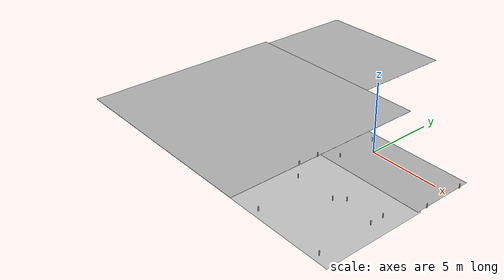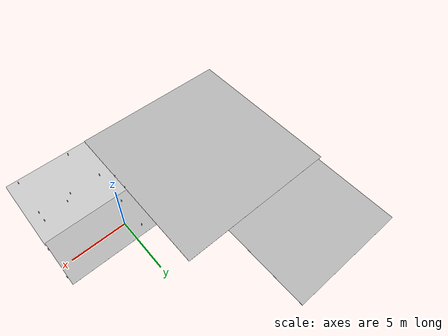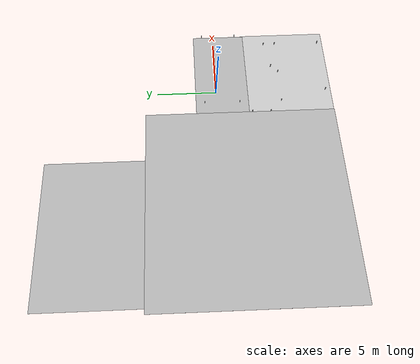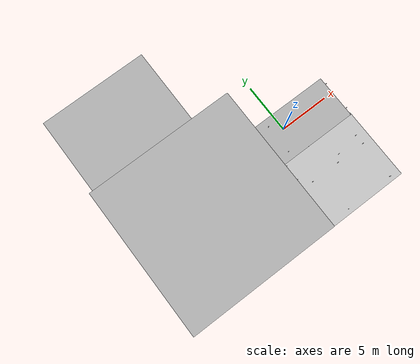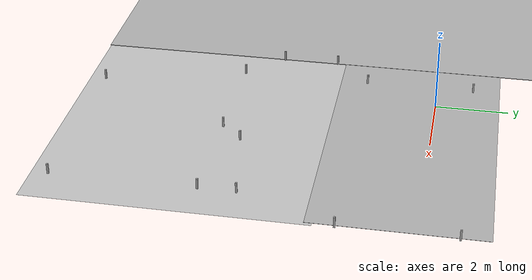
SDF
<?xml version="1.0" ?>
<sdf version='1.4'>
  <world name='default'>

    <!-- global light source -->

    <light type="directional" name="sun">
      <cast_shadows>false</cast_shadows>
      <pose>0 1 10 0 0 0</pose>
      <diffuse>0.8 0.8 0.8 1</diffuse>
      <specular>0.1 0.1 0.1 1</specular>
      <attenuation>
        <range>1000</range>
        <constant>0.9</constant>
        <linear>0.01</linear>
        <quadratic>0.001</quadratic>
      </attenuation>
      <direction>-0.5 0.5 -1.0</direction>
    </light>

    <light name='my_light' type='directional'>
      <pose>0.000000 0.000000 30.000000 0.000000 0.000000 0.000000</pose>
      <diffuse>0.900000 0.900000 0.900000 1.000000</diffuse>
      <specular>0.100000 0.100000 0.100000 1.000000</specular>
      <attenuation>
        <range>20.000000</range>
      </attenuation>
      <direction>0.000000 0.000000 -1.000000</direction>
      <cast_shadows>0</cast_shadows>
    </light>

    <!-- A ground plane -->

    <model name="floor_student_area">
      <static>true</static>
      <link name="link">
      <pose>2 -6.25 0 0 0 0</pose>
        <visual name="visual">
          <cast_shadows>false</cast_shadows>
          <geometry>
            <plane>
              <normal>0 0 1</normal>
              <size>8.1 7.4</size>
            </plane>
          </geometry>
          <material>
            <script>
              <name>carpet</name>
            </script>
          </material>
        </visual>
        <collision name="collision">
          <geometry>
            <plane>
              <normal>0 0 1</normal>
              <size>8.1 7.4</size>
            </plane>
          </geometry>
          <surface>
            <friction>
              <ode>
                <mu>100</mu>
                <mu2>50</mu2>
              </ode>
            </friction>
          </surface>
        </collision>
      </link>
    </model>

    <model name="floor_kitchen">
      <static>true</static>
      <link name="link">
      <pose>1.969 -0.5 0 0 0 0</pose>
        <visual name="visual">
          <cast_shadows>false</cast_shadows>
          <geometry>
            <plane>
              <normal>0 0 1</normal>
              <size>8 4.5</size>
            </plane>
          </geometry>
          <material>
            <script>
              <name>floor_kitchen</name>
            </script>
          </material>
        </visual>
        <collision name="collision">
          <geometry>
            <plane>
              <normal>0 0 1</normal>
              <size>8 4.5</size>
            </plane>
          </geometry>
          <surface>
            <friction>
              <ode>
                <mu>100</mu>
                <mu2>50</mu2>
              </ode>
            </friction>
          </surface>
        </collision>
      </link>
    </model>

    <model name="floor_office">
      <static>true</static>
      <link name="link">
      <pose>-11.931 9.93 0 0 0 0</pose>
        <visual name="visual">
          <cast_shadows>false</cast_shadows>
          <geometry>
            <plane>
              <normal>0 0 1</normal>
              <size>11.4 8.4</size>
            </plane>
          </geometry>
          <material>
            <script>
              <name>carpet</name>
            </script>
          </material>
        </visual>
        <collision name="collision">
          <geometry>
            <plane>
              <normal>0 0 1</normal>
              <size>11.4 8.4</size>
            </plane>
          </geometry>
          <surface>
            <friction>
              <ode>
                <mu>100</mu>
                <mu2>50</mu2>
              </ode>
            </friction>
          </surface>
        </collision>
      </link>
    </model>

    <model name="floor">
      <static>true</static>
      <link name="link">
      <pose>-10 -1.969 0 0 0 0</pose>
        <visual name="visual">
          <cast_shadows>false</cast_shadows>
          <geometry>
            <plane>
              <normal>0 0 1</normal>
              <size>16 16</size>
            </plane>
          </geometry>
          <material>
            <script>
              <name>carpet</name>
            </script>
          </material>
        </visual>
        <collision name="collision">
          <geometry>
            <plane>
              <normal>0 0 1</normal>
              <size>16 16</size>
            </plane>
          </geometry>
          <surface>
            <friction>
              <ode>
                <mu>100</mu>
                <mu2>50</mu2>
              </ode>
            </friction>
          </surface>
        </collision>
      </link>
    </model>

    <model name="reflMarker">
      <link name="link">
        <pose>0 0 0.115 0 -0 0</pose>
        <inertial>
          <mass>0.39</mass>
          <inertia>
            <ixx>0.00058</ixx>
            <ixy>0</ixy>
            <ixz>0</ixz>
            <iyy>0.00058</iyy>
            <iyz>0</iyz>
            <izz>0.00019</izz>
          </inertia>
        </inertial>
        <collision name="collision">
          <pose>0 0 0.01 0 -0 0</pose>
          <laser_retro>2000</laser_retro>
          <geometry>
            <box>
              <size>0.05 0.05 0.3</size>
            </box>
          </geometry>
          <max_contacts>10</max_contacts>
          <surface>
            <bounce/>
            <friction>
              <ode/>
            </friction>
            <contact>
              <ode/>
            </contact>
          </surface>
        </collision>
        <visual name="visual">
          <pose>0 0 0.01 0 -0 0</pose>
          <laser_retro>2000</laser_retro>
          <geometry>
            <box>
              <size>0.05 0.05 0.3</size>
            </box>
          </geometry>
          <material>
            <script>
              <uri>model://reflMarker/materials/scripts</uri>
              <uri>model://reflMarker/materials/textures</uri>
              <name>ReflMarker/Diffuse</name>
            </script>
          </material>
        </visual>
        <velocity_decay>
          <linear>0</linear>
          <angular>0</angular>
        </velocity_decay>
        <self_collide>0</self_collide>
        <kinematic>0</kinematic>
        <gravity>1</gravity>
      </link>
      <pose>-2 -3 0 0 -0 0</pose>
      <static>0</static>
    </model>

    <model name='reflMarker_0'>
      <link name='link'>
        <pose>0 0 0.115 0 -0 0</pose>
        <inertial>
          <mass>0.39</mass>
          <inertia>
            <ixx>0.00058</ixx>
            <ixy>0</ixy>
            <ixz>0</ixz>
            <iyy>0.00058</iyy>
            <iyz>0</iyz>
            <izz>0.00019</izz>
          </inertia>
        </inertial>
        <collision name='collision'>
          <pose>0 0 0.01 0 -0 0</pose>
          <laser_retro>2000</laser_retro>
          <geometry>
            <box>
              <size>0.05 0.05 0.3</size>
            </box>
          </geometry>
          <max_contacts>10</max_contacts>
          <surface>
            <bounce/>
            <friction>
              <ode/>
            </friction>
            <contact>
              <ode/>
            </contact>
          </surface>
        </collision>
        <visual name='visual'>
          <pose>0 0 0.01 0 -0 0</pose>
          <laser_retro>2000</laser_retro>
          <geometry>
            <box>
              <size>0.05 0.05 0.3</size>
            </box>
          </geometry>
          <material>
            <script>
              <uri>model://reflMarker/materials/scripts</uri>
              <uri>model://reflMarker/materials/textures</uri>
              <name>ReflMarker/Diffuse</name>
            </script>
          </material>
        </visual>
        <velocity_decay>
          <linear>0</linear>
          <angular>0</angular>
        </velocity_decay>
        <self_collide>0</self_collide>
        <kinematic>0</kinematic>
        <gravity>1</gravity>
      </link>
      <pose>-2 -4.56932 0 0 -0 0</pose>
      <static>0</static>
    </model>
    <model name='reflMarker_1'>
      <link name='link'>
        <pose>0 0 0.115 0 -0 0</pose>
        <inertial>
          <mass>0.39</mass>
          <inertia>
            <ixx>0.00058</ixx>
            <ixy>0</ixy>
            <ixz>0</ixz>
            <iyy>0.00058</iyy>
            <iyz>0</iyz>
            <izz>0.00019</izz>
          </inertia>
        </inertial>
        <collision name='collision'>
          <pose>0 0 0.01 0 -0 0</pose>
          <laser_retro>2000</laser_retro>
          <geometry>
            <box>
              <size>0.05 0.05 0.3</size>
            </box>
          </geometry>
          <max_contacts>10</max_contacts>
          <surface>
            <bounce/>
            <friction>
              <ode/>
            </friction>
            <contact>
              <ode/>
            </contact>
          </surface>
        </collision>
        <visual name='visual'>
          <pose>0 0 0.01 0 -0 0</pose>
          <laser_retro>2000</laser_retro>
          <geometry>
            <box>
              <size>0.05 0.05 0.3</size>
            </box>
          </geometry>
          <material>
            <script>
              <uri>model://reflMarker/materials/scripts</uri>
              <uri>model://reflMarker/materials/textures</uri>
              <name>ReflMarker/Diffuse</name>
            </script>
          </material>
        </visual>
        <velocity_decay>
          <linear>0</linear>
          <angular>0</angular>
        </velocity_decay>
        <self_collide>0</self_collide>
        <kinematic>0</kinematic>
        <gravity>1</gravity>
      </link>
      <pose>-1 -2 0 0 -0 0</pose>
      <static>0</static>
    </model>
    <model name='reflMarker_2'>
      <link name='link'>
        <pose>0 0 0.115 0 -0 0</pose>
        <inertial>
          <mass>0.39</mass>
          <inertia>
            <ixx>0.00058</ixx>
            <ixy>0</ixy>
            <ixz>0</ixz>
            <iyy>0.00058</iyy>
            <iyz>0</iyz>
            <izz>0.00019</izz>
          </inertia>
        </inertial>
        <collision name='collision'>
          <pose>0 0 0.01 0 -0 0</pose>
          <laser_retro>2000</laser_retro>
          <geometry>
            <box>
              <size>0.05 0.05 0.3</size>
            </box>
          </geometry>
          <max_contacts>10</max_contacts>
          <surface>
            <bounce/>
            <friction>
              <ode/>
            </friction>
            <contact>
              <ode/>
            </contact>
          </surface>
        </collision>
        <visual name='visual'>
          <pose>0 0 0.01 0 -0 0</pose>
          <laser_retro>2000</laser_retro>
          <geometry>
            <box>
              <size>0.05 0.05 0.3</size>
            </box>
          </geometry>
          <material>
            <script>
              <uri>model://reflMarker/materials/scripts</uri>
              <uri>model://reflMarker/materials/textures</uri>
              <name>ReflMarker/Diffuse</name>
            </script>
          </material>
        </visual>
        <velocity_decay>
          <linear>0</linear>
          <angular>0</angular>
        </velocity_decay>
        <self_collide>0</self_collide>
        <kinematic>0</kinematic>
        <gravity>1</gravity>
      </link>
      <pose>-1 1 0 0 -0 0</pose>
      <static>0</static>
    </model>
    <model name='reflMarker_3'>
      <link name='link'>
        <pose>0 0 0.115 0 -0 0</pose>
        <inertial>
          <mass>0.39</mass>
          <inertia>
            <ixx>0.00058</ixx>
            <ixy>0</ixy>
            <ixz>0</ixz>
            <iyy>0.00058</iyy>
            <iyz>0</iyz>
            <izz>0.00019</izz>
          </inertia>
        </inertial>
        <collision name='collision'>
          <pose>0 0 0.01 0 -0 0</pose>
          <laser_retro>2000</laser_retro>
          <geometry>
            <box>
              <size>0.05 0.05 0.3</size>
            </box>
          </geometry>
          <max_contacts>10</max_contacts>
          <surface>
            <bounce/>
            <friction>
              <ode/>
            </friction>
            <contact>
              <ode/>
            </contact>
          </surface>
        </collision>
        <visual name='visual'>
          <pose>0 0 0.01 0 -0 0</pose>
          <laser_retro>2000</laser_retro>
          <geometry>
            <box>
              <size>0.05 0.05 0.3</size>
            </box>
          </geometry>
          <material>
            <script>
              <uri>model://reflMarker/materials/scripts</uri>
              <uri>model://reflMarker/materials/textures</uri>
              <name>ReflMarker/Diffuse</name>
            </script>
          </material>
        </visual>
        <velocity_decay>
          <linear>0</linear>
          <angular>0</angular>
        </velocity_decay>
        <self_collide>0</self_collide>
        <kinematic>0</kinematic>
        <gravity>1</gravity>
      </link>
      <pose>6 1 0 0 -0 0</pose>
      <static>0</static>
    </model>
    <model name='reflMarker_4'>
      <link name='link'>
        <pose>0 0 0.115 0 -0 0</pose>
        <inertial>
          <mass>0.39</mass>
          <inertia>
            <ixx>0.00058</ixx>
            <ixy>0</ixy>
            <ixz>0</ixz>
            <iyy>0.00058</iyy>
            <iyz>0</iyz>
            <izz>0.00019</izz>
          </inertia>
        </inertial>
        <collision name='collision'>
          <pose>0 0 0.01 0 -0 0</pose>
          <laser_retro>2000</laser_retro>
          <geometry>
            <box>
              <size>0.05 0.05 0.3</size>
            </box>
          </geometry>
          <max_contacts>10</max_contacts>
          <surface>
            <bounce/>
            <friction>
              <ode/>
            </friction>
            <contact>
              <ode/>
            </contact>
          </surface>
        </collision>
        <visual name='visual'>
          <pose>0 0 0.01 0 -0 0</pose>
          <laser_retro>2000</laser_retro>
          <geometry>
            <box>
              <size>0.05 0.05 0.3</size>
            </box>
          </geometry>
          <material>
            <script>
              <uri>model://reflMarker/materials/scripts</uri>
              <uri>model://reflMarker/materials/textures</uri>
              <name>ReflMarker/Diffuse</name>
            </script>
          </material>
        </visual>
        <velocity_decay>
          <linear>0</linear>
          <angular>0</angular>
        </velocity_decay>
        <self_collide>0</self_collide>
        <kinematic>0</kinematic>
        <gravity>1</gravity>
      </link>
      <pose>6 -2 0 0 -0 0</pose>
      <static>0</static>
    </model>
    <model name='reflMarker_5'>
      <link name='link'>
        <pose>0 0 0.115 0 -0 0</pose>
        <inertial>
          <mass>0.39</mass>
          <inertia>
            <ixx>0.00058</ixx>
            <ixy>0</ixy>
            <ixz>0</ixz>
            <iyy>0.00058</iyy>
            <iyz>0</iyz>
            <izz>0.00019</izz>
          </inertia>
        </inertial>
        <collision name='collision'>
          <pose>0 0 0.01 0 -0 0</pose>
          <laser_retro>2000</laser_retro>
          <geometry>
            <box>
              <size>0.05 0.05 0.3</size>
            </box>
          </geometry>
          <max_contacts>10</max_contacts>
          <surface>
            <bounce/>
            <friction>
              <ode/>
            </friction>
            <contact>
              <ode/>
            </contact>
          </surface>
        </collision>
        <visual name='visual'>
          <pose>0 0 0.01 0 -0 0</pose>
          <laser_retro>2000</laser_retro>
          <geometry>
            <box>
              <size>0.05 0.05 0.3</size>
            </box>
          </geometry>
          <material>
            <script>
              <uri>model://reflMarker/materials/scripts</uri>
              <uri>model://reflMarker/materials/textures</uri>
              <name>ReflMarker/Diffuse</name>
            </script>
          </material>
        </visual>
        <velocity_decay>
          <linear>0</linear>
          <angular>0</angular>
        </velocity_decay>
        <self_collide>0</self_collide>
        <kinematic>0</kinematic>
        <gravity>1</gravity>
      </link>
      <pose>5 -4.5948 0 0 -0 0</pose>
      <static>0</static>
    </model>
    <model name='reflMarker_6'>
      <link name='link'>
        <pose>0 0 0.115 0 -0 0</pose>
        <inertial>
          <mass>0.39</mass>
          <inertia>
            <ixx>0.00058</ixx>
            <ixy>0</ixy>
            <ixz>0</ixz>
            <iyy>0.00058</iyy>
            <iyz>0</iyz>
            <izz>0.00019</izz>
          </inertia>
        </inertial>
        <collision name='collision'>
          <pose>0 0 0.01 0 -0 0</pose>
          <laser_retro>2000</laser_retro>
          <geometry>
            <box>
              <size>0.05 0.05 0.3</size>
            </box>
          </geometry>
          <max_contacts>10</max_contacts>
          <surface>
            <bounce/>
            <friction>
              <ode/>
            </friction>
            <contact>
              <ode/>
            </contact>
          </surface>
        </collision>
        <visual name='visual'>
          <pose>0 0 0.01 0 -0 0</pose>
          <laser_retro>2000</laser_retro>
          <geometry>
            <box>
              <size>0.05 0.05 0.3</size>
            </box>
          </geometry>
          <material>
            <script>
              <uri>model://reflMarker/materials/scripts</uri>
              <uri>model://reflMarker/materials/textures</uri>
              <name>ReflMarker/Diffuse</name>
            </script>
          </material>
        </visual>
        <velocity_decay>
          <linear>0</linear>
          <angular>0</angular>
        </velocity_decay>
        <self_collide>0</self_collide>
        <kinematic>0</kinematic>
        <gravity>1</gravity>
      </link>
      <pose>2.58916 -5 0 0 -0 0</pose>
      <static>0</static>
    </model>
    <model name='reflMarker_7'>
      <link name='link'>
        <pose>0 0 0.115 0 -0 0</pose>
        <inertial>
          <mass>0.39</mass>
          <inertia>
            <ixx>0.00058</ixx>
            <ixy>0</ixy>
            <ixz>0</ixz>
            <iyy>0.00058</iyy>
            <iyz>0</iyz>
            <izz>0.00019</izz>
          </inertia>
        </inertial>
        <collision name='collision'>
          <pose>0 0 0.01 0 -0 0</pose>
          <laser_retro>2000</laser_retro>
          <geometry>
            <box>
              <size>0.05 0.05 0.3</size>
            </box>
          </geometry>
          <max_contacts>10</max_contacts>
          <surface>
            <bounce/>
            <friction>
              <ode/>
            </friction>
            <contact>
              <ode/>
            </contact>
          </surface>
        </collision>
        <visual name='visual'>
          <pose>0 0 0.01 0 -0 0</pose>
          <laser_retro>2000</laser_retro>
          <geometry>
            <box>
              <size>0.05 0.05 0.3</size>
            </box>
          </geometry>
          <material>
            <script>
              <uri>model://reflMarker/materials/scripts</uri>
              <uri>model://reflMarker/materials/textures</uri>
              <name>ReflMarker/Diffuse</name>
            </script>
          </material>
        </visual>
        <velocity_decay>
          <linear>0</linear>
          <angular>0</angular>
        </velocity_decay>
        <self_collide>0</self_collide>
        <kinematic>0</kinematic>
        <gravity>1</gravity>
      </link>
      <pose>5 -9.49334 0 0 -0 0</pose>
      <static>0</static>
    </model>
    <model name='reflMarker_8'>
      <link name='link'>
        <pose>0 0 0.115 0 -0 0</pose>
        <inertial>
          <mass>0.39</mass>
          <inertia>
            <ixx>0.00058</ixx>
            <ixy>0</ixy>
            <ixz>0</ixz>
            <iyy>0.00058</iyy>
            <iyz>0</iyz>
            <izz>0.00019</izz>
          </inertia>
        </inertial>
        <collision name='collision'>
          <pose>0 0 0.01 0 -0 0</pose>
          <laser_retro>2000</laser_retro>
          <geometry>
            <box>
              <size>0.05 0.05 0.3</size>
            </box>
          </geometry>
          <max_contacts>10</max_contacts>
          <surface>
            <bounce/>
            <friction>
              <ode/>
            </friction>
            <contact>
              <ode/>
            </contact>
          </surface>
        </collision>
        <visual name='visual'>
          <pose>0 0 0.01 0 -0 0</pose>
          <laser_retro>2000</laser_retro>
          <geometry>
            <box>
              <size>0.05 0.05 0.3</size>
            </box>
          </geometry>
          <material>
            <script>
              <uri>model://reflMarker/materials/scripts</uri>
              <uri>model://reflMarker/materials/textures</uri>
              <name>ReflMarker/Diffuse</name>
            </script>
          </material>
        </visual>
        <velocity_decay>
          <linear>0</linear>
          <angular>0</angular>
        </velocity_decay>
        <self_collide>0</self_collide>
        <kinematic>0</kinematic>
        <gravity>1</gravity>
      </link>
      <pose>0 -9.49647 0 0 -0 0</pose>
      <static>0</static>
    </model>
    <model name='reflMarker_9'>
      <link name='link'>
        <pose>0 0 0.115 0 -0 0</pose>
        <inertial>
          <mass>0.39</mass>
          <inertia>
            <ixx>0.00058</ixx>
            <ixy>0</ixy>
            <ixz>0</ixz>
            <iyy>0.00058</iyy>
            <iyz>0</iyz>
            <izz>0.00019</izz>
          </inertia>
        </inertial>
        <collision name='collision'>
          <pose>0 0 0.01 0 -0 0</pose>
          <laser_retro>2000</laser_retro>
          <geometry>
            <box>
              <size>0.05 0.05 0.3</size>
            </box>
          </geometry>
          <max_contacts>10</max_contacts>
          <surface>
            <bounce/>
            <friction>
              <ode/>
            </friction>
            <contact>
              <ode/>
            </contact>
          </surface>
        </collision>
        <visual name='visual'>
          <pose>0 0 0.01 0 -0 0</pose>
          <laser_retro>2000</laser_retro>
          <geometry>
            <box>
              <size>0.05 0.05 0.3</size>
            </box>
          </geometry>
          <material>
            <script>
              <uri>model://reflMarker/materials/scripts</uri>
              <uri>model://reflMarker/materials/textures</uri>
              <name>ReflMarker/Diffuse</name>
            </script>
          </material>
        </visual>
        <velocity_decay>
          <linear>0</linear>
          <angular>0</angular>
        </velocity_decay>
        <self_collide>0</self_collide>
        <kinematic>0</kinematic>
        <gravity>1</gravity>
      </link>
      <pose>2 -5.58529 0 0 -0 0</pose>
      <static>0</static>
    </model>
    <model name='reflMarker_10'>
      <link name='link'>
        <pose>0 0 0.115 0 -0 0</pose>
        <inertial>
          <mass>0.39</mass>
          <inertia>
            <ixx>0.00058</ixx>
            <ixy>0</ixy>
            <ixz>0</ixz>
            <iyy>0.00058</iyy>
            <iyz>0</iyz>
            <izz>0.00019</izz>
          </inertia>
        </inertial>
        <collision name='collision'>
          <pose>0 0 0.01 0 -0 0</pose>
          <laser_retro>2000</laser_retro>
          <geometry>
            <box>
              <size>0.05 0.05 0.3</size>
            </box>
          </geometry>
          <max_contacts>10</max_contacts>
          <surface>
            <bounce/>
            <friction>
              <ode/>
            </friction>
            <contact>
              <ode/>
            </contact>
          </surface>
        </collision>
        <visual name='visual'>
          <pose>0 0 0.01 0 -0 0</pose>
          <laser_retro>2000</laser_retro>
          <geometry>
            <box>
              <size>0.05 0.05 0.3</size>
            </box>
          </geometry>
          <material>
            <script>
              <uri>model://reflMarker/materials/scripts</uri>
              <uri>model://reflMarker/materials/textures</uri>
              <name>ReflMarker/Diffuse</name>
            </script>
          </material>
        </visual>
        <velocity_decay>
          <linear>0</linear>
          <angular>0</angular>
        </velocity_decay>
        <self_collide>0</self_collide>
        <kinematic>0</kinematic>
        <gravity>1</gravity>
      </link>
      <pose>5 -5.59502 0 0 -0 0</pose>
      <static>0</static>
    </model>
    <model name='reflMarker_11'>
      <link name='link'>
        <pose>0 0 0.115 0 -0 0</pose>
        <inertial>
          <mass>0.39</mass>
          <inertia>
            <ixx>0.00058</ixx>
            <ixy>0</ixy>
            <ixz>0</ixz>
            <iyy>0.00058</iyy>
            <iyz>0</iyz>
            <izz>0.00019</izz>
          </inertia>
        </inertial>
        <collision name='collision'>
          <pose>0 0 0.01 0 -0 0</pose>
          <laser_retro>2000</laser_retro>
          <geometry>
            <box>
              <size>0.05 0.05 0.3</size>
            </box>
          </geometry>
          <max_contacts>10</max_contacts>
          <surface>
            <bounce/>
            <friction>
              <ode/>
            </friction>
            <contact>
              <ode/>
            </contact>
          </surface>
        </collision>
        <visual name='visual'>
          <pose>0 0 0.01 0 -0 0</pose>
          <laser_retro>2000</laser_retro>
          <geometry>
            <box>
              <size>0.05 0.05 0.3</size>
            </box>
          </geometry>
          <material>
            <script>
              <uri>model://reflMarker/materials/scripts</uri>
              <uri>model://reflMarker/materials/textures</uri>
              <name>ReflMarker/Diffuse</name>
            </script>
          </material>
        </visual>
        <velocity_decay>
          <linear>0</linear>
          <angular>0</angular>
        </velocity_decay>
        <self_collide>0</self_collide>
        <kinematic>0</kinematic>
        <gravity>1</gravity>
      </link>
      <pose>-1 -5.56613 0 0 -0 0</pose>
      <static>0</static>
    </model>

    <gui>
      <camera name='user_camera'>
        <pose>12 -3 12 0 0.7 3.14</pose>
      </camera>
    </gui>

  </world>
</sdf>
